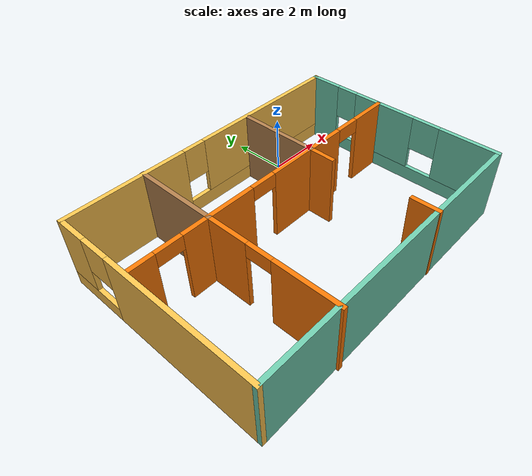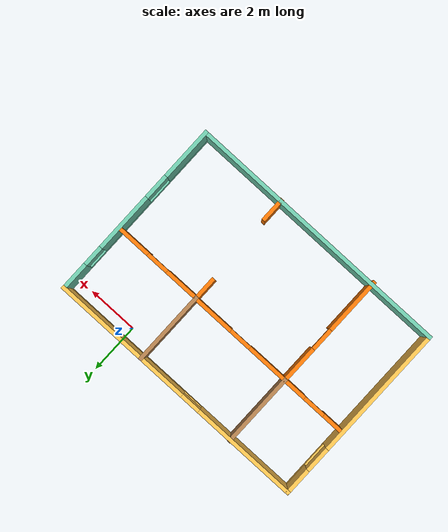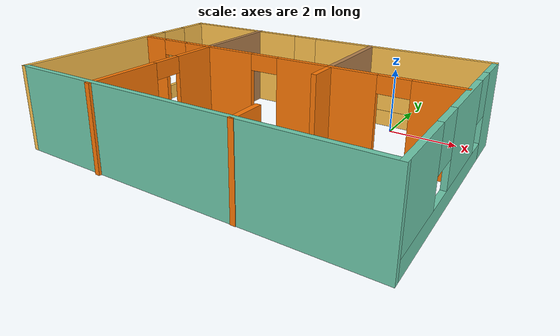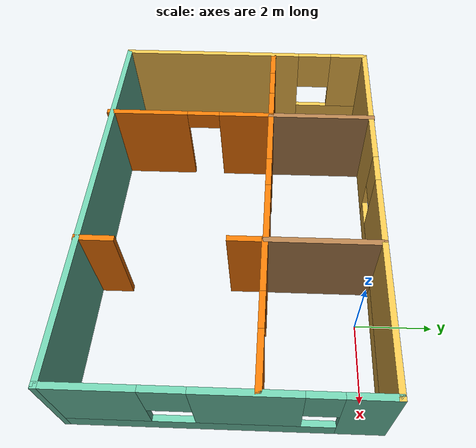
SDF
<?xml version='1.0'?>
<sdf version='1.6'>
  <model name='my_model'>
    <pose frame=''>-2.66387 -3.23804 0 0 -0 0</pose>
    <link name='Wall_1'>
      <pose frame=''>5.3 0.028845 0 0 0 -1.5708</pose>
      <visual name='Wall_1_Visual_0'>
        <pose frame=''>-3.15577 0 1.25 0 -0 0</pose>
        <geometry>
          <box>
            <size>1.18847 0.15 2.5</size>
          </box>
        </geometry>
        <material>
          <script>
            <uri>file://media/materials/scripts/gazebo.material</uri>
            <name>Gazebo/Grey</name>
          </script>
          <ambient>0.435294 0.796078 0.67451 1</ambient>
        </material>
        <meta>
          <layer>0</layer>
        </meta>
      </visual>
      <collision name='Wall_1_Collision_0'>
        <geometry>
          <box>
            <size>1.18847 0.15 2.5</size>
          </box>
        </geometry>
        <pose frame=''>-3.15577 0 1.25 0 -0 0</pose>
      </collision>
      <visual name='Wall_1_Visual_1'>
        <pose frame=''>0.594233 0 0.25 0 -0 0</pose>
        <geometry>
          <box>
            <size>6.31153 0.15 0.5</size>
          </box>
        </geometry>
        <material>
          <script>
            <uri>file://media/materials/scripts/gazebo.material</uri>
            <name>Gazebo/Grey</name>
          </script>
          <ambient>0.435294 0.796078 0.67451 1</ambient>
        </material>
        <meta>
          <layer>0</layer>
        </meta>
      </visual>
      <collision name='Wall_1_Collision_1'>
        <geometry>
          <box>
            <size>6.31153 0.15 0.5</size>
          </box>
        </geometry>
        <pose frame=''>0.594233 0 0.25 0 -0 0</pose>
      </collision>
      <visual name='Wall_1_Visual_2'>
        <pose frame=''>-0.574957 0 1.5 0 -0 0</pose>
        <geometry>
          <box>
            <size>2.37316 0.15 2</size>
          </box>
        </geometry>
        <material>
          <script>
            <uri>file://media/materials/scripts/gazebo.material</uri>
            <name>Gazebo/Grey</name>
          </script>
          <ambient>0.435294 0.796078 0.67451 1</ambient>
        </material>
        <meta>
          <layer>0</layer>
        </meta>
      </visual>
      <collision name='Wall_1_Collision_2'>
        <geometry>
          <box>
            <size>2.37316 0.15 2</size>
          </box>
        </geometry>
        <pose frame=''>-0.574957 0 1.5 0 -0 0</pose>
      </collision>
      <visual name='Wall_1_Visual_3'>
        <pose frame=''>2.68081 0 1.5 0 -0 0</pose>
        <geometry>
          <box>
            <size>2.13838 0.15 2</size>
          </box>
        </geometry>
        <material>
          <script>
            <uri>file://media/materials/scripts/gazebo.material</uri>
            <name>Gazebo/Grey</name>
          </script>
          <ambient>0.435294 0.796078 0.67451 1</ambient>
        </material>
        <meta>
          <layer>0</layer>
        </meta>
      </visual>
      <collision name='Wall_1_Collision_3'>
        <geometry>
          <box>
            <size>2.13838 0.15 2</size>
          </box>
        </geometry>
        <pose frame=''>2.68081 0 1.5 0 -0 0</pose>
      </collision>
      <visual name='Wall_1_Visual_4'>
        <pose frame=''>-2.16153 0 1.9 0 -0 0</pose>
        <geometry>
          <box>
            <size>0.8 0.15 1.2</size>
          </box>
        </geometry>
        <material>
          <script>
            <uri>file://media/materials/scripts/gazebo.material</uri>
            <name>Gazebo/Grey</name>
          </script>
          <ambient>0.435294 0.796078 0.67451 1</ambient>
        </material>
        <meta>
          <layer>0</layer>
        </meta>
      </visual>
      <collision name='Wall_1_Collision_4'>
        <geometry>
          <box>
            <size>0.8 0.15 1.2</size>
          </box>
        </geometry>
        <pose frame=''>-2.16153 0 1.9 0 -0 0</pose>
      </collision>
      <visual name='Wall_1_Visual_5'>
        <pose frame=''>1.11162 0 1.9 0 -0 0</pose>
        <geometry>
          <box>
            <size>1 0.15 1.2</size>
          </box>
        </geometry>
        <material>
          <script>
            <uri>file://media/materials/scripts/gazebo.material</uri>
            <name>Gazebo/Grey</name>
          </script>
          <ambient>0.435294 0.796078 0.67451 1</ambient>
        </material>
        <meta>
          <layer>0</layer>
        </meta>
      </visual>
      <collision name='Wall_1_Collision_5'>
        <geometry>
          <box>
            <size>1 0.15 1.2</size>
          </box>
        </geometry>
        <pose frame=''>1.11162 0 1.9 0 -0 0</pose>
      </collision>
    </link>
    <link name='Wall_12'>
      <collision name='Wall_12_Collision'>
        <geometry>
          <box>
            <size>3 0.15 2.5</size>
          </box>
        </geometry>
        <pose frame=''>0 0 1.25 0 -0 0</pose>
      </collision>
      <visual name='Wall_12_Visual'>
        <pose frame=''>0 0 1.25 0 -0 0</pose>
        <geometry>
          <box>
            <size>3 0.15 2.5</size>
          </box>
        </geometry>
        <material>
          <script>
            <uri>file://media/materials/scripts/gazebo.material</uri>
            <name>Gazebo/Wood</name>
          </script>
          <ambient>1 1 1 1</ambient>
        </material>
        <meta>
          <layer>0</layer>
        </meta>
      </visual>
      <pose frame=''>1.65 2.27885 0 0 -0 1.5708</pose>
    </link>
    <link name='Wall_14'>
      <pose frame=''>3.45 0.853845 0 0 -0 0</pose>
      <visual name='Wall_14_Visual_0'>
        <pose frame=''>-1.14946 0 1.25 0 -0 0</pose>
        <geometry>
          <box>
            <size>1.45107 0.15 2.5</size>
          </box>
        </geometry>
        <material>
          <script>
            <uri>file://media/materials/scripts/gazebo.material</uri>
            <name>Gazebo/Grey</name>
          </script>
          <ambient>0.996078 0.47451 0.0196078 1</ambient>
        </material>
        <meta>
          <layer>0</layer>
        </meta>
      </visual>
      <collision name='Wall_14_Collision_0'>
        <geometry>
          <box>
            <size>1.45107 0.15 2.5</size>
          </box>
        </geometry>
        <pose frame=''>-1.14946 0 1.25 0 -0 0</pose>
      </collision>
      <visual name='Wall_14_Visual_1'>
        <pose frame=''>1.17554 0 1.25 0 -0 0</pose>
        <geometry>
          <box>
            <size>1.39893 0.15 2.5</size>
          </box>
        </geometry>
        <material>
          <script>
            <uri>file://media/materials/scripts/gazebo.material</uri>
            <name>Gazebo/Grey</name>
          </script>
          <ambient>0.996078 0.47451 0.0196078 1</ambient>
        </material>
        <meta>
          <layer>0</layer>
        </meta>
      </visual>
      <collision name='Wall_14_Collision_1'>
        <geometry>
          <box>
            <size>1.39893 0.15 2.5</size>
          </box>
        </geometry>
        <pose frame=''>1.17554 0 1.25 0 -0 0</pose>
      </collision>
      <visual name='Wall_14_Visual_2'>
        <pose frame=''>0.026073 0 2.25 0 -0 0</pose>
        <geometry>
          <box>
            <size>0.9 0.15 0.5</size>
          </box>
        </geometry>
        <material>
          <script>
            <uri>file://media/materials/scripts/gazebo.material</uri>
            <name>Gazebo/Grey</name>
          </script>
          <ambient>0.996078 0.47451 0.0196078 1</ambient>
        </material>
        <meta>
          <layer>0</layer>
        </meta>
      </visual>
      <collision name='Wall_14_Collision_2'>
        <geometry>
          <box>
            <size>0.9 0.15 0.5</size>
          </box>
        </geometry>
        <pose frame=''>0.026073 0 2.25 0 -0 0</pose>
      </collision>
    </link>
    <link name='Wall_2'>
      <collision name='Wall_2_Collision'>
        <geometry>
          <box>
            <size>10.75 0.15 2.5</size>
          </box>
        </geometry>
        <pose frame=''>0 0 1.25 0 -0 0</pose>
      </collision>
      <visual name='Wall_2_Visual'>
        <pose frame=''>0 0 1.25 0 -0 0</pose>
        <geometry>
          <box>
            <size>10.75 0.15 2.5</size>
          </box>
        </geometry>
        <material>
          <script>
            <uri>file://media/materials/scripts/gazebo.material</uri>
            <name>Gazebo/Grey</name>
          </script>
          <ambient>0.435294 0.796078 0.67451 1</ambient>
        </material>
        <meta>
          <layer>0</layer>
        </meta>
      </visual>
      <pose frame=''>0 -3.64615 0 0 -0 3.14159</pose>
    </link>
    <link name='Wall_20'>
      <collision name='Wall_20_Collision'>
        <geometry>
          <box>
            <size>1 0.15 2.5</size>
          </box>
        </geometry>
        <pose frame=''>0 0 1.25 0 -0 0</pose>
      </collision>
      <visual name='Wall_20_Visual'>
        <pose frame=''>0 0 1.25 0 -0 0</pose>
        <geometry>
          <box>
            <size>1 0.15 2.5</size>
          </box>
        </geometry>
        <material>
          <script>
            <uri>file://media/materials/scripts/gazebo.material</uri>
            <name>Gazebo/Grey</name>
          </script>
          <ambient>0.996078 0.47451 0.0196078 1</ambient>
        </material>
        <meta>
          <layer>0</layer>
        </meta>
      </visual>
      <pose frame=''>1.65 0.428846 0 0 0 -1.5708</pose>
    </link>
    <link name='Wall_22'>
      <collision name='Wall_22_Collision'>
        <geometry>
          <box>
            <size>1 0.15 2.5</size>
          </box>
        </geometry>
        <pose frame=''>0 0 1.25 0 -0 0</pose>
      </collision>
      <visual name='Wall_22_Visual'>
        <pose frame=''>0 0 1.25 0 -0 0</pose>
        <geometry>
          <box>
            <size>1 0.15 2.5</size>
          </box>
        </geometry>
        <material>
          <script>
            <uri>file://media/materials/scripts/gazebo.material</uri>
            <name>Gazebo/Grey</name>
          </script>
          <ambient>0.996078 0.47451 0.0196078 1</ambient>
        </material>
        <meta>
          <layer>0</layer>
        </meta>
      </visual>
      <pose frame=''>1.75018 -3.23734 0 0 -0 1.5708</pose>
    </link>
    <link name='Wall_24'>
      <pose frame=''>-5.3 0.028845 0 0 -0 1.5708</pose>
      <visual name='Wall_24_Visual_0'>
        <pose frame=''>-1.05953 0 1.25 0 -0 0</pose>
        <geometry>
          <box>
            <size>5.38094 0.15 2.5</size>
          </box>
        </geometry>
        <material>
          <script>
            <uri>file://media/materials/scripts/gazebo.material</uri>
            <name>Gazebo/Grey</name>
          </script>
          <ambient>1 0.764706 0.305882 1</ambient>
        </material>
        <meta>
          <layer>0</layer>
        </meta>
      </visual>
      <collision name='Wall_24_Collision_0'>
        <geometry>
          <box>
            <size>5.38094 0.15 2.5</size>
          </box>
        </geometry>
        <pose frame=''>-1.05953 0 1.25 0 -0 0</pose>
      </collision>
      <visual name='Wall_24_Visual_1'>
        <pose frame=''>2.69047 0 0.25 0 -0 0</pose>
        <geometry>
          <box>
            <size>2.11906 0.15 0.5</size>
          </box>
        </geometry>
        <material>
          <script>
            <uri>file://media/materials/scripts/gazebo.material</uri>
            <name>Gazebo/Grey</name>
          </script>
          <ambient>1 0.764706 0.305882 1</ambient>
        </material>
        <meta>
          <layer>0</layer>
        </meta>
      </visual>
      <collision name='Wall_24_Collision_1'>
        <geometry>
          <box>
            <size>2.11906 0.15 0.5</size>
          </box>
        </geometry>
        <pose frame=''>2.69047 0 0.25 0 -0 0</pose>
      </collision>
      <visual name='Wall_24_Visual_2'>
        <pose frame=''>3.19047 0 1.5 0 -0 0</pose>
        <geometry>
          <box>
            <size>1.11906 0.15 2</size>
          </box>
        </geometry>
        <material>
          <script>
            <uri>file://media/materials/scripts/gazebo.material</uri>
            <name>Gazebo/Grey</name>
          </script>
          <ambient>1 0.764706 0.305882 1</ambient>
        </material>
        <meta>
          <layer>0</layer>
        </meta>
      </visual>
      <collision name='Wall_24_Collision_2'>
        <geometry>
          <box>
            <size>1.11906 0.15 2</size>
          </box>
        </geometry>
        <pose frame=''>3.19047 0 1.5 0 -0 0</pose>
      </collision>
      <visual name='Wall_24_Visual_3'>
        <pose frame=''>2.13094 0 1.9 0 -0 0</pose>
        <geometry>
          <box>
            <size>1 0.15 1.2</size>
          </box>
        </geometry>
        <material>
          <script>
            <uri>file://media/materials/scripts/gazebo.material</uri>
            <name>Gazebo/Grey</name>
          </script>
          <ambient>1 0.764706 0.305882 1</ambient>
        </material>
        <meta>
          <layer>0</layer>
        </meta>
      </visual>
      <collision name='Wall_24_Collision_3'>
        <geometry>
          <box>
            <size>1 0.15 1.2</size>
          </box>
        </geometry>
        <pose frame=''>2.13094 0 1.9 0 -0 0</pose>
      </collision>
    </link>
    <link name='Wall_25'>
      <pose frame=''>0 3.70385 0 0 -0 0</pose>
      <visual name='Wall_25_Visual_0'>
        <pose frame=''>-3.2296 0 1.25 0 -0 0</pose>
        <geometry>
          <box>
            <size>4.2908 0.15 2.5</size>
          </box>
        </geometry>
        <material>
          <script>
            <uri>file://media/materials/scripts/gazebo.material</uri>
            <name>Gazebo/Grey</name>
          </script>
          <ambient>1 0.764706 0.305882 1</ambient>
        </material>
        <meta>
          <layer>0</layer>
        </meta>
      </visual>
      <collision name='Wall_25_Collision_0'>
        <geometry>
          <box>
            <size>4.2908 0.15 2.5</size>
          </box>
        </geometry>
        <pose frame=''>-3.2296 0 1.25 0 -0 0</pose>
      </collision>
      <visual name='Wall_25_Visual_1'>
        <pose frame=''>2.1454 0 0.25 0 -0 0</pose>
        <geometry>
          <box>
            <size>6.4592 0.15 0.5</size>
          </box>
        </geometry>
        <material>
          <script>
            <uri>file://media/materials/scripts/gazebo.material</uri>
            <name>Gazebo/Grey</name>
          </script>
          <ambient>1 0.764706 0.305882 1</ambient>
        </material>
        <meta>
          <layer>0</layer>
        </meta>
      </visual>
      <collision name='Wall_25_Collision_1'>
        <geometry>
          <box>
            <size>6.4592 0.15 0.5</size>
          </box>
        </geometry>
        <pose frame=''>2.1454 0 0.25 0 -0 0</pose>
      </collision>
      <visual name='Wall_25_Visual_2'>
        <pose frame=''>2.5454 0 1.5 0 -0 0</pose>
        <geometry>
          <box>
            <size>5.6592 0.15 2</size>
          </box>
        </geometry>
        <material>
          <script>
            <uri>file://media/materials/scripts/gazebo.material</uri>
            <name>Gazebo/Grey</name>
          </script>
          <ambient>1 0.764706 0.305882 1</ambient>
        </material>
        <meta>
          <layer>0</layer>
        </meta>
      </visual>
      <collision name='Wall_25_Collision_2'>
        <geometry>
          <box>
            <size>5.6592 0.15 2</size>
          </box>
        </geometry>
        <pose frame=''>2.5454 0 1.5 0 -0 0</pose>
      </collision>
      <visual name='Wall_25_Visual_3'>
        <pose frame=''>-0.684198 0 1.9 0 -0 0</pose>
        <geometry>
          <box>
            <size>0.8 0.15 1.2</size>
          </box>
        </geometry>
        <material>
          <script>
            <uri>file://media/materials/scripts/gazebo.material</uri>
            <name>Gazebo/Grey</name>
          </script>
          <ambient>1 0.764706 0.305882 1</ambient>
        </material>
        <meta>
          <layer>0</layer>
        </meta>
      </visual>
      <collision name='Wall_25_Collision_3'>
        <geometry>
          <box>
            <size>0.8 0.15 1.2</size>
          </box>
        </geometry>
        <pose frame=''>-0.684198 0 1.9 0 -0 0</pose>
      </collision>
    </link>
    <link name='Wall_27'>
      <pose frame=''>-3.88096 0.875 0 0 -0 0</pose>
      <visual name='Wall_27_Visual_0'>
        <pose frame=''>-0.950695 0 1.25 0 -0 0</pose>
        <geometry>
          <box>
            <size>0.848609 0.15 2.5</size>
          </box>
        </geometry>
        <material>
          <script>
            <uri>file://media/materials/scripts/gazebo.material</uri>
            <name>Gazebo/Grey</name>
          </script>
          <ambient>0.996078 0.47451 0.0196078 1</ambient>
        </material>
        <meta>
          <layer>0</layer>
        </meta>
      </visual>
      <collision name='Wall_27_Collision_0'>
        <geometry>
          <box>
            <size>0.848609 0.15 2.5</size>
          </box>
        </geometry>
        <pose frame=''>-0.950695 0 1.25 0 -0 0</pose>
      </collision>
      <visual name='Wall_27_Visual_1'>
        <pose frame=''>0.874305 0 1.25 0 -0 0</pose>
        <geometry>
          <box>
            <size>1.00139 0.15 2.5</size>
          </box>
        </geometry>
        <material>
          <script>
            <uri>file://media/materials/scripts/gazebo.material</uri>
            <name>Gazebo/Grey</name>
          </script>
          <ambient>0.996078 0.47451 0.0196078 1</ambient>
        </material>
        <meta>
          <layer>0</layer>
        </meta>
      </visual>
      <collision name='Wall_27_Collision_1'>
        <geometry>
          <box>
            <size>1.00139 0.15 2.5</size>
          </box>
        </geometry>
        <pose frame=''>0.874305 0 1.25 0 -0 0</pose>
      </collision>
      <visual name='Wall_27_Visual_2'>
        <pose frame=''>-0.076391 0 2.25 0 -0 0</pose>
        <geometry>
          <box>
            <size>0.9 0.15 0.5</size>
          </box>
        </geometry>
        <material>
          <script>
            <uri>file://media/materials/scripts/gazebo.material</uri>
            <name>Gazebo/Grey</name>
          </script>
          <ambient>0.996078 0.47451 0.0196078 1</ambient>
        </material>
        <meta>
          <layer>0</layer>
        </meta>
      </visual>
      <collision name='Wall_27_Collision_2'>
        <geometry>
          <box>
            <size>0.9 0.15 0.5</size>
          </box>
        </geometry>
        <pose frame=''>-0.076391 0 2.25 0 -0 0</pose>
      </collision>
    </link>
    <link name='Wall_28'>
      <collision name='Wall_28_Collision'>
        <geometry>
          <box>
            <size>3 0.15 2.5</size>
          </box>
        </geometry>
        <pose frame=''>0 0 1.25 0 -0 0</pose>
      </collision>
      <visual name='Wall_28_Visual'>
        <pose frame=''>0 0 1.25 0 -0 0</pose>
        <geometry>
          <box>
            <size>3 0.15 2.5</size>
          </box>
        </geometry>
        <material>
          <script>
            <uri>file://media/materials/scripts/gazebo.material</uri>
            <name>Gazebo/Wood</name>
          </script>
          <ambient>1 1 1 1</ambient>
        </material>
        <meta>
          <layer>0</layer>
        </meta>
      </visual>
      <pose frame=''>-2.58096 2.3 0 0 -0 1.5708</pose>
    </link>
    <link name='Wall_30'>
      <pose frame=''>-0.530961 0.875 0 0 -0 0</pose>
      <visual name='Wall_30_Visual_0'>
        <pose frame=''>-1.25705 0 1.25 0 -0 0</pose>
        <geometry>
          <box>
            <size>1.73589 0.15 2.5</size>
          </box>
        </geometry>
        <material>
          <script>
            <uri>file://media/materials/scripts/gazebo.material</uri>
            <name>Gazebo/Grey</name>
          </script>
          <ambient>0.996078 0.47451 0.0196078 1</ambient>
        </material>
        <meta>
          <layer>0</layer>
        </meta>
      </visual>
      <collision name='Wall_30_Collision_0'>
        <geometry>
          <box>
            <size>1.73589 0.15 2.5</size>
          </box>
        </geometry>
        <pose frame=''>-1.25705 0 1.25 0 -0 0</pose>
      </collision>
      <visual name='Wall_30_Visual_1'>
        <pose frame=''>1.31795 0 1.25 0 -0 0</pose>
        <geometry>
          <box>
            <size>1.6141 0.15 2.5</size>
          </box>
        </geometry>
        <material>
          <script>
            <uri>file://media/materials/scripts/gazebo.material</uri>
            <name>Gazebo/Grey</name>
          </script>
          <ambient>0.996078 0.47451 0.0196078 1</ambient>
        </material>
        <meta>
          <layer>0</layer>
        </meta>
      </visual>
      <collision name='Wall_30_Collision_1'>
        <geometry>
          <box>
            <size>1.6141 0.15 2.5</size>
          </box>
        </geometry>
        <pose frame=''>1.31795 0 1.25 0 -0 0</pose>
      </collision>
      <visual name='Wall_30_Visual_2'>
        <pose frame=''>0.060895 0 2.25 0 -0 0</pose>
        <geometry>
          <box>
            <size>0.9 0.15 0.5</size>
          </box>
        </geometry>
        <material>
          <script>
            <uri>file://media/materials/scripts/gazebo.material</uri>
            <name>Gazebo/Grey</name>
          </script>
          <ambient>0.996078 0.47451 0.0196078 1</ambient>
        </material>
        <meta>
          <layer>0</layer>
        </meta>
      </visual>
      <collision name='Wall_30_Collision_2'>
        <geometry>
          <box>
            <size>0.9 0.15 0.5</size>
          </box>
        </geometry>
        <pose frame=''>0.060895 0 2.25 0 -0 0</pose>
      </collision>
    </link>
    <link name='Wall_32'>
      <pose frame=''>-2.58096 -1.425 0 0 0 -1.5708</pose>
      <visual name='Wall_32_Visual_0'>
        <pose frame=''>-1.59891 0 1.25 0 -0 0</pose>
        <geometry>
          <box>
            <size>1.55218 0.15 2.5</size>
          </box>
        </geometry>
        <material>
          <script>
            <uri>file://media/materials/scripts/gazebo.material</uri>
            <name>Gazebo/Grey</name>
          </script>
          <ambient>0.996078 0.47451 0.0196078 1</ambient>
        </material>
        <meta>
          <layer>0</layer>
        </meta>
      </visual>
      <collision name='Wall_32_Collision_0'>
        <geometry>
          <box>
            <size>1.55218 0.15 2.5</size>
          </box>
        </geometry>
        <pose frame=''>-1.59891 0 1.25 0 -0 0</pose>
      </collision>
      <visual name='Wall_32_Visual_1'>
        <pose frame=''>1.22609 0 1.25 0 -0 0</pose>
        <geometry>
          <box>
            <size>2.29782 0.15 2.5</size>
          </box>
        </geometry>
        <material>
          <script>
            <uri>file://media/materials/scripts/gazebo.material</uri>
            <name>Gazebo/Grey</name>
          </script>
          <ambient>0.996078 0.47451 0.0196078 1</ambient>
        </material>
        <meta>
          <layer>0</layer>
        </meta>
      </visual>
      <collision name='Wall_32_Collision_1'>
        <geometry>
          <box>
            <size>2.29782 0.15 2.5</size>
          </box>
        </geometry>
        <pose frame=''>1.22609 0 1.25 0 -0 0</pose>
      </collision>
      <visual name='Wall_32_Visual_2'>
        <pose frame=''>-0.372816 0 2.25 0 -0 0</pose>
        <geometry>
          <box>
            <size>0.9 0.15 0.5</size>
          </box>
        </geometry>
        <material>
          <script>
            <uri>file://media/materials/scripts/gazebo.material</uri>
            <name>Gazebo/Grey</name>
          </script>
          <ambient>0.996078 0.47451 0.0196078 1</ambient>
        </material>
        <meta>
          <layer>0</layer>
        </meta>
      </visual>
      <collision name='Wall_32_Collision_2'>
        <geometry>
          <box>
            <size>0.9 0.15 0.5</size>
          </box>
        </geometry>
        <pose frame=''>-0.372816 0 2.25 0 -0 0</pose>
      </collision>
    </link>
    <static>1</static>
  </model>
</sdf>
